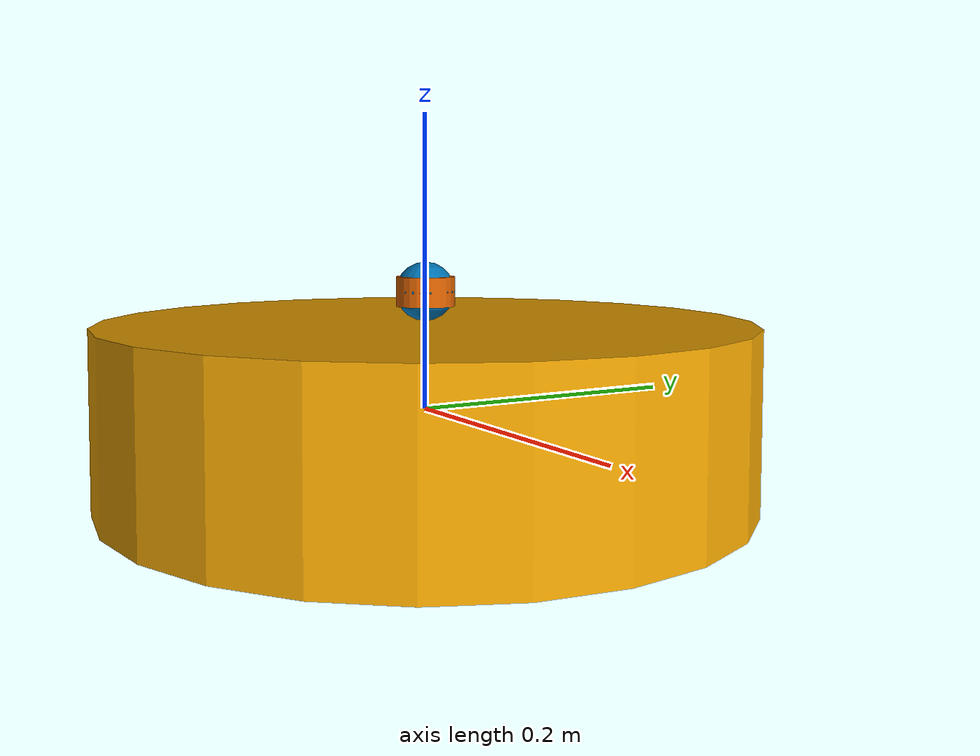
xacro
<?xml version="1.0"?>
<robot xmlns:xacro="http://ros.org/wiki/xacro" name="tri_roomba">

  <!-- Parameters -->
  <xacro:property name="wheel_radius" value="0.05"/>
  <xacro:property name="wheel_width" value="0.02"/>
  <xacro:property name="wheel_base" value="0.17"/> <!-- distance from center to wheel -->
  <xacro:property name="base_mass" value="5.0"/>

  <!-- Base -->
  <link name="base_link">
    <inertial>
      <mass value="${base_mass}"/>
      <origin xyz="0 0 0" rpy="0 0 0"/>
      <inertia ixx="0.15" ixy="0.0" ixz="0.0" iyy="0.15" iyz="0.0" izz="0.15"/>
    </inertial>
    <visual>
      <geometry>
        <cylinder radius="0.22" length="0.12"/>
      </geometry>
      <origin xyz="0 0 0" rpy="0 0 0"/>
    </visual>
    <collision>
      <geometry>
        <cylinder radius="0.22" length="0.12"/>
      </geometry>
      <origin xyz="0 0 0" rpy="0 0 0"/>
    </collision>
  </link>

  <!-- Wheels -->
  <link name="wheel_front_link">
    <inertial>
      <mass value="0.3"/>
      <origin xyz="0 0 0"/>
      <inertia ixx="0.001" ixy="0.0" ixz="0.0" iyy="0.001" iyz="0.0" izz="0.001"/>
    </inertial>
    <visual>
      <geometry><cylinder radius="${wheel_radius}" length="${wheel_width}"/></geometry>
      <origin xyz="0 0 0" rpy="0 1.5708 0"/>
    </visual>
    <collision>
      <geometry><cylinder radius="${wheel_radius}" length="${wheel_width}"/></geometry>
      <origin xyz="0 0 0" rpy="0 1.5708 0"/>
    </collision>
  </link>
  <joint name="wheel_front_joint" type="continuous">
    <parent link="base_link"/>
    <child link="wheel_front_link"/>
    <origin xyz="${wheel_base} 0 0" rpy="0 0 0"/>
    <axis xyz="0 1 0"/>
  </joint>

  <link name="wheel_left_link">
    <visual>
      <geometry><cylinder radius="${wheel_radius}" length="${wheel_width}"/></geometry>
      <origin xyz="0 0 0" rpy="0 1.5708 0"/>
    </visual>
  </link>
  <joint name="wheel_left_joint" type="continuous">
    <parent link="base_link"/>
    <child link="wheel_left_link"/>
    <origin xyz="-${wheel_base} 0 0" rpy="0 0 2.0944"/>
    <axis xyz="0 1 0"/>
  </joint>

  <link name="wheel_right_link">
    <visual>
      <geometry><cylinder radius="${wheel_radius}" length="${wheel_width}"/></geometry>
      <origin xyz="0 0 0" rpy="0 1.5708 0"/>
    </visual>
  </link>
  <joint name="wheel_right_joint" type="continuous">
    <parent link="base_link"/>
    <child link="wheel_right_link"/>
    <origin xyz="0 -${wheel_base} 0" rpy="0 0 -2.0944"/>
    <axis xyz="0 1 0"/>
  </joint>

  <transmission name="trans_wheel_front">
    <type>transmission_interface/SimpleTransmission</type>
    <joint name="wheel_front_joint"/>
    <actuator name="motor_wheel_front"><mechanicalReduction>1</mechanicalReduction></actuator>
  </transmission>

  <transmission name="trans_wheel_left">
    <type>transmission_interface/SimpleTransmission</type>
    <joint name="wheel_left_joint"/>
    <actuator name="motor_wheel_left"><mechanicalReduction>1</mechanicalReduction></actuator>
  </transmission>

  <transmission name="trans_wheel_right">
    <type>transmission_interface/SimpleTransmission</type>
    <joint name="wheel_right_joint"/>
    <actuator name="motor_wheel_right"><mechanicalReduction>1</mechanicalReduction></actuator>
  </transmission>

  <link name="imu_link">
    <inertial><mass value="0.05"/></inertial>
    <visual><geometry><sphere radius="0.02"/></geometry></visual>
  </link>
  <joint name="imu_fixed" type="fixed"><parent link="base_link"/><child link="imu_link"/><origin xyz="0 0 0.08" rpy="0 0 0"/></joint>

  <link name="lidar_link">
    <visual><geometry><cylinder radius="0.02" length="0.02"/></geometry></visual>
  </link>
  <joint name="lidar_fixed" type="fixed"><parent link="base_link"/><child link="lidar_link"/><origin xyz="0 0 0.08" rpy="0 0 0"/></joint>

  <gazebo>
    <plugin name="gazebo_ros_control" filename="libgazebo_ros_control.so">
      <robotNamespace>/tri_roomba</robotNamespace>
      <controlPeriod>0.001</controlPeriod>
    </plugin>
  </gazebo>

  <gazebo reference="lidar_link">
    <plugin name="gazebo_ros_laser" filename="libgazebo_ros_laser.so">
      <topicName>/scan</topicName>
      <frameName>lidar_link</frameName>
      <updateRate>10.0</updateRate>
      <rangeMax>6.0</rangeMax>
      <samples>360</samples>
      <resolution>1</resolution>
      <minAngle>-3.14159</minAngle>
      <maxAngle>3.14159</maxAngle>
    </plugin>
  </gazebo>

  <gazebo reference="imu_link">
    <plugin name="gazebo_ros_imu" filename="libgazebo_ros_imu.so">
      <topicName>/imu/data</topicName>
      <frameName>imu_link</frameName>
      <updateRate>50.0</updateRate>
    </plugin>
  </gazebo>

</robot>
